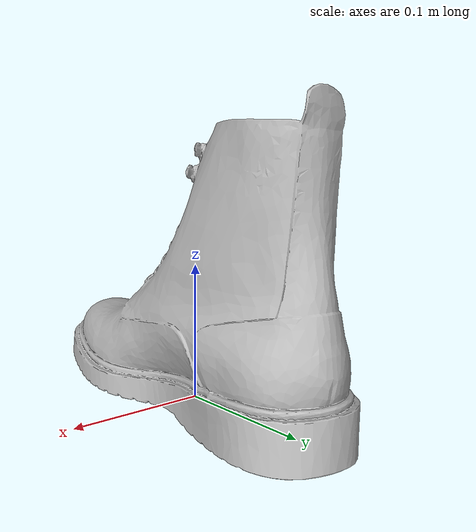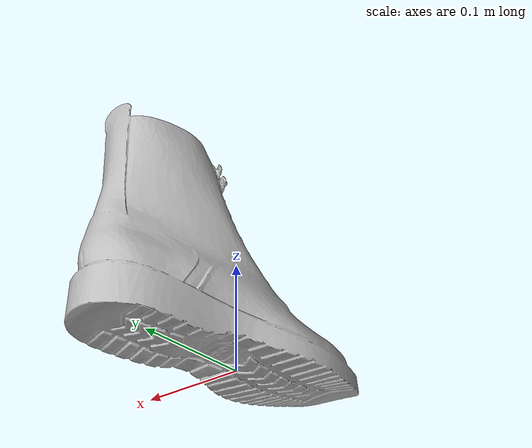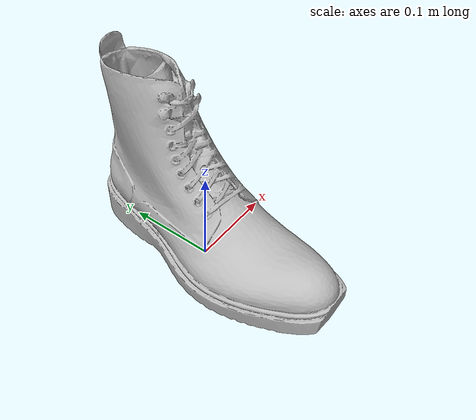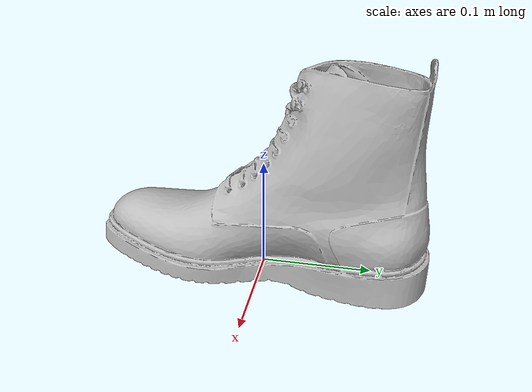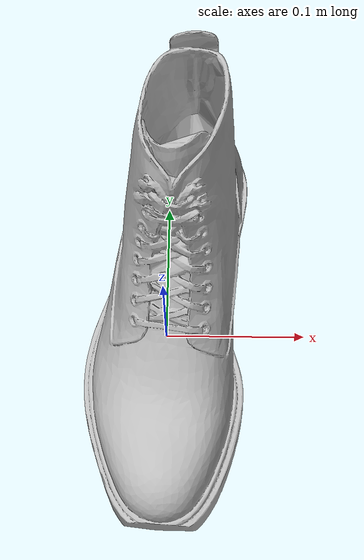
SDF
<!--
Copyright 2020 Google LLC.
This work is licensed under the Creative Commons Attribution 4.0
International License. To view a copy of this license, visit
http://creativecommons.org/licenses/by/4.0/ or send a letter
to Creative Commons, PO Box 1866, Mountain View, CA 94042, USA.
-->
<?xml version="1.0" ?>
<sdf version="1.6">
  <model name="MARTIN_WEDGE_LACE_BOOT">
    <link name="link_0">
      <visual name="visual">
        <geometry>
          <mesh>
            <uri>meshes/model.obj</uri>
          </mesh>
        </geometry>
      </visual>
      <collision name="collision_0">
        <geometry>
          <mesh>
            <uri>meshes/model.obj</uri>
          </mesh>
        </geometry>
      </collision>
    </link>
  </model>
</sdf>
